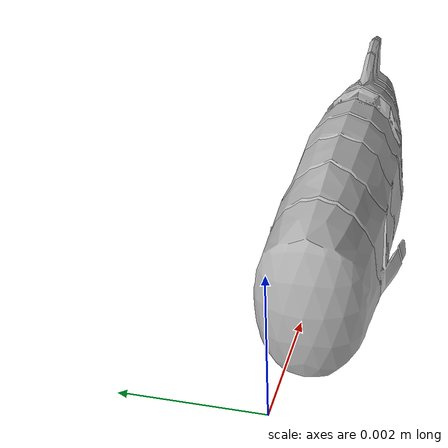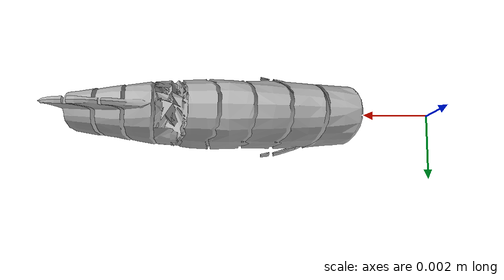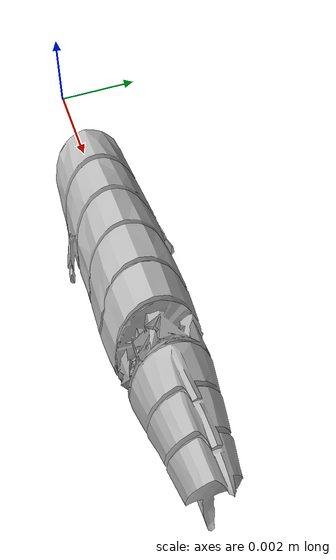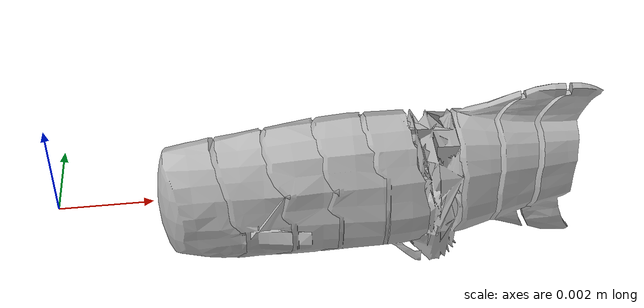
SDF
<?xml version="1.0" ?>
<sdf version="1.6">
  <world name="world">
    <model name="zebrafish">
      <pose>0 0 0 0 0 0</pose>
      <link name="link_1">
        <pose>0.003000000026077032 0.0 0.0 0 0 0</pose>
        <inertial>
          <pose>0.0002732492240615168 -1.97994288919193e-08 -5.650116857951326e-05 0.0 0.0 0.0</pose>
          <mass>4.0521463491666665e-06</mass>
          <inertia>
            <ixx>2.8087038294161773e-12</ixx>
            <ixy>2.59860681584197e-16</ixy>
            <ixz>7.53613830741763e-14</ixz>
            <iyy>2.3503783406325966e-12</iyy>
            <iyz>4.2333460592653663e-16</iyz>
            <izz>1.4029470401400248e-12</izz>
          </inertia>
        </inertial>
        <collision name="link_1_collision">
          <pose>0.0 0.0 0.0 0.0 0.0 0.0</pose>
          <geometry>
            <mesh>
              <uri>meshes_zebrafish/link_1.obj</uri>
              <scale>1.0 1.0 1.0</scale>
            </mesh>
          </geometry>
        </collision>
        <visual name="link_1_visual">
          <pose>0.0 0.0 0.0 0.0 0.0 0.0</pose>
          <geometry>
            <mesh>
              <uri>meshes_zebrafish/link_1.obj</uri>
              <scale>1.0 1.0 1.0</scale>
            </mesh>
          </geometry>
          <material/>
        </visual>
      </link>
      <link name="link_2">
        <pose>0.004000000189989805 0.0 0.0 0 0 0</pose>
        <inertial>
          <pose>-0.00022717678486607507 -8.219959851907085e-08 -6.289915105203633e-05 0.0 0.0 0.0</pose>
          <mass>4.854872365333333e-06</mass>
          <inertia>
            <ixx>4.054950923692486e-12</ixx>
            <ixy>-1.1484001297372617e-16</ixy>
            <ixz>1.1419704220898796e-13</ixz>
            <iyy>3.3781171583254866e-12</iyy>
            <iyz>6.818633027387787e-16</iyz>
            <izz>1.981751379253991e-12</izz>
          </inertia>
        </inertial>
        <collision name="link_2_collision">
          <pose>0.0 0.0 0.0 0.0 0.0 0.0</pose>
          <geometry>
            <mesh>
              <uri>meshes_zebrafish/link_2.obj</uri>
              <scale>1.0 1.0 1.0</scale>
            </mesh>
          </geometry>
        </collision>
        <visual name="link_2_visual">
          <pose>0.0 0.0 0.0 0.0 0.0 0.0</pose>
          <geometry>
            <mesh>
              <uri>meshes_zebrafish/link_2.obj</uri>
              <scale>1.0 1.0 1.0</scale>
            </mesh>
          </geometry>
          <material/>
        </visual>
      </link>
      <link name="link_3">
        <pose>0.004999999888241291 0.0 0.0 0 0 0</pose>
        <inertial>
          <pose>-0.0002226231496408773 3.3757354961996367e-07 -3.5049441185557767e-06 0.0 0.0 0.0</pose>
          <mass>5.157439432833333e-06</mass>
          <inertia>
            <ixx>4.67697383062243e-12</ixx>
            <ixy>-9.074877137566703e-16</ixy>
            <ixz>3.6481284000477364e-14</ixz>
            <iyy>3.9454530406174475e-12</iyy>
            <iyz>-5.468168704910777e-16</iyz>
            <izz>2.0510055572515746e-12</izz>
          </inertia>
        </inertial>
        <collision name="link_3_collision">
          <pose>0.0 0.0 0.0 0.0 0.0 0.0</pose>
          <geometry>
            <mesh>
              <uri>meshes_zebrafish/link_3.obj</uri>
              <scale>1.0 1.0 1.0</scale>
            </mesh>
          </geometry>
        </collision>
        <visual name="link_3_visual">
          <pose>0.0 0.0 0.0 0.0 0.0 0.0</pose>
          <geometry>
            <mesh>
              <uri>meshes_zebrafish/link_3.obj</uri>
              <scale>1.0 1.0 1.0</scale>
            </mesh>
          </geometry>
          <material/>
        </visual>
      </link>
      <link name="link_4">
        <pose>0.006000000052154064 0.0 0.0 0 0 0</pose>
        <inertial>
          <pose>-0.00019477319484265197 2.3520952322439315e-07 4.5153454879482645e-05 0.0 0.0 0.0</pose>
          <mass>5.498348945e-06</mass>
          <inertia>
            <ixx>5.301401349493594e-12</ixx>
            <ixy>-7.594792361230709e-16</ixy>
            <ixz>-1.2919244220334572e-14</ixz>
            <iyy>4.518545556789769e-12</iyy>
            <iyz>-1.913852691484321e-15</iyz>
            <izz>2.349854946278564e-12</izz>
          </inertia>
        </inertial>
        <collision name="link_4_collision">
          <pose>0.0 0.0 0.0 0.0 0.0 0.0</pose>
          <geometry>
            <mesh>
              <uri>meshes_zebrafish/link_4.obj</uri>
              <scale>1.0 1.0 1.0</scale>
            </mesh>
          </geometry>
        </collision>
        <visual name="link_4_visual">
          <pose>0.0 0.0 0.0 0.0 0.0 0.0</pose>
          <geometry>
            <mesh>
              <uri>meshes_zebrafish/link_4.obj</uri>
              <scale>1.0 1.0 1.0</scale>
            </mesh>
          </geometry>
          <material/>
        </visual>
      </link>
      <link name="link_5">
        <pose>0.007000000216066837 0.0 0.0 0 0 0</pose>
        <inertial>
          <pose>-0.00020395735361605007 -8.842410672844107e-08 4.337361965129497e-05 0.0 0.0 0.0</pose>
          <mass>5.479874165666666e-06</mass>
          <inertia>
            <ixx>5.300408358361644e-12</ixx>
            <ixy>2.2081984687633257e-16</ixy>
            <ixz>2.5655783521762258e-14</ixz>
            <iyy>4.488854231172425e-12</iyy>
            <iyz>5.337128725014414e-16</iyz>
            <izz>2.2795643807420016e-12</izz>
          </inertia>
        </inertial>
        <collision name="link_5_collision">
          <pose>0.0 0.0 0.0 0.0 0.0 0.0</pose>
          <geometry>
            <mesh>
              <uri>meshes_zebrafish/link_5.obj</uri>
              <scale>1.0 1.0 1.0</scale>
            </mesh>
          </geometry>
        </collision>
        <visual name="link_5_visual">
          <pose>0.0 0.0 0.0 0.0 0.0 0.0</pose>
          <geometry>
            <mesh>
              <uri>meshes_zebrafish/link_5.obj</uri>
              <scale>1.0 1.0 1.0</scale>
            </mesh>
          </geometry>
          <material/>
        </visual>
      </link>
      <link name="link_6">
        <pose>0.00800000037997961 0.0 0.0 0 0 0</pose>
        <inertial>
          <pose>-0.00024221163159728412 -1.9450732335945777e-07 3.207300392264691e-05 0.0 0.0 0.0</pose>
          <mass>5.159457690333333e-06</mass>
          <inertia>
            <ixx>4.939246005196555e-12</ixx>
            <ixy>6.053666353726204e-16</ixy>
            <ixz>9.647922195089838e-15</ixz>
            <iyy>4.24538394961568e-12</iyy>
            <iyz>-1.9796288817279288e-16</iyz>
            <izz>1.849075636047097e-12</izz>
          </inertia>
        </inertial>
        <collision name="link_6_collision">
          <pose>0.0 0.0 0.0 0.0 0.0 0.0</pose>
          <geometry>
            <mesh>
              <uri>meshes_zebrafish/link_6.obj</uri>
              <scale>1.0 1.0 1.0</scale>
            </mesh>
          </geometry>
        </collision>
        <visual name="link_6_visual">
          <pose>0.0 0.0 0.0 0.0 0.0 0.0</pose>
          <geometry>
            <mesh>
              <uri>meshes_zebrafish/link_6.obj</uri>
              <scale>1.0 1.0 1.0</scale>
            </mesh>
          </geometry>
          <material/>
        </visual>
      </link>
      <link name="link_7">
        <pose>0.008999999612569809 0.0 0.0 0 0 0</pose>
        <inertial>
          <pose>-0.0003052042318265614 -2.714426844606979e-07 0.00015843392122992753 0.0 0.0 0.0</pose>
          <mass>4.249855453833333e-06</mass>
          <inertia>
            <ixx>3.3009859429267404e-12</ixx>
            <ixy>3.1379057053656826e-16</ixy>
            <ixz>-1.649673957428002e-13</ixz>
            <iyy>2.8409817451483943e-12</iyy>
            <iyz>7.12045864460346e-16</iyz>
            <izz>1.293106339839356e-12</izz>
          </inertia>
        </inertial>
        <collision name="link_7_collision">
          <pose>0.0 0.0 0.0 0.0 0.0 0.0</pose>
          <geometry>
            <mesh>
              <uri>meshes_zebrafish/link_7.obj</uri>
              <scale>1.0 1.0 1.0</scale>
            </mesh>
          </geometry>
        </collision>
        <visual name="link_7_visual">
          <pose>0.0 0.0 0.0 0.0 0.0 0.0</pose>
          <geometry>
            <mesh>
              <uri>meshes_zebrafish/link_7.obj</uri>
              <scale>1.0 1.0 1.0</scale>
            </mesh>
          </geometry>
          <material/>
        </visual>
      </link>
      <link name="link_8">
        <pose>0.009999999776482582 0.0 0.0 0 0 0</pose>
        <inertial>
          <pose>-0.00034258391490533507 1.496806484415186e-07 0.00023371407774293266 0.0 0.0 0.0</pose>
          <mass>3.4060886698333332e-06</mass>
          <inertia>
            <ixx>2.3861448209304844e-12</ixx>
            <ixy>4.119826686591595e-17</ixy>
            <ixz>-1.9282902344368923e-13</ixz>
            <iyy>2.2293678879472307e-12</iyy>
            <iyz>2.0877097769727913e-16</iyz>
            <izz>8.426788781595641e-13</izz>
          </inertia>
        </inertial>
        <collision name="link_8_collision">
          <pose>0.0 0.0 0.0 0.0 0.0 0.0</pose>
          <geometry>
            <mesh>
              <uri>meshes_zebrafish/link_8.obj</uri>
              <scale>1.0 1.0 1.0</scale>
            </mesh>
          </geometry>
        </collision>
        <visual name="link_8_visual">
          <pose>0.0 0.0 0.0 0.0 0.0 0.0</pose>
          <geometry>
            <mesh>
              <uri>meshes_zebrafish/link_8.obj</uri>
              <scale>1.0 1.0 1.0</scale>
            </mesh>
          </geometry>
          <material/>
        </visual>
      </link>
      <link name="link_9">
        <pose>0.010999999940395355 0.0 0.0 0 0 0</pose>
        <inertial>
          <pose>-0.00037563688475628207 -1.148331642662189e-08 0.00019189624898692601 0.0 0.0 0.0</pose>
          <mass>2.650774316333333e-06</mass>
          <inertia>
            <ixx>1.7882286047325874e-12</ixx>
            <ixy>7.268954042952895e-17</ixy>
            <ixz>-7.176690563395181e-14</ixz>
            <iyy>1.787960335865206e-12</iyy>
            <iyz>3.481599167776466e-16</iyz>
            <izz>5.124582731408049e-13</izz>
          </inertia>
        </inertial>
        <collision name="link_9_collision">
          <pose>0.0 0.0 0.0 0.0 0.0 0.0</pose>
          <geometry>
            <mesh>
              <uri>meshes_zebrafish/link_9.obj</uri>
              <scale>1.0 1.0 1.0</scale>
            </mesh>
          </geometry>
        </collision>
        <visual name="link_9_visual">
          <pose>0.0 0.0 0.0 0.0 0.0 0.0</pose>
          <geometry>
            <mesh>
              <uri>meshes_zebrafish/link_9.obj</uri>
              <scale>1.0 1.0 1.0</scale>
            </mesh>
          </geometry>
          <material/>
        </visual>
      </link>
      <joint name="joint_1" type="revolute">
        <parent>link_1</parent>
        <child>link_2</child>
        <pose>0 0 0 0 0 0</pose>
        <axis>
          <xyz>0 0 1</xyz>
          <limit>
            <lower>-1.5707963267948966</lower>
            <upper>1.5707963267948966</upper>
            <effort>100</effort>
            <velocity>100</velocity>
          </limit>
        </axis>
      </joint>
      <joint name="joint_2" type="revolute">
        <parent>link_2</parent>
        <child>link_3</child>
        <pose>0 0 0 0 0 0</pose>
        <axis>
          <xyz>0 0 1</xyz>
          <limit>
            <lower>-1.5707963267948966</lower>
            <upper>1.5707963267948966</upper>
            <effort>100</effort>
            <velocity>100</velocity>
          </limit>
        </axis>
      </joint>
      <joint name="joint_3" type="revolute">
        <parent>link_3</parent>
        <child>link_4</child>
        <pose>0 0 0 0 0 0</pose>
        <axis>
          <xyz>0 0 1</xyz>
          <limit>
            <lower>-1.5707963267948966</lower>
            <upper>1.5707963267948966</upper>
            <effort>100</effort>
            <velocity>100</velocity>
          </limit>
        </axis>
      </joint>
      <joint name="joint_4" type="revolute">
        <parent>link_4</parent>
        <child>link_5</child>
        <pose>0 0 0 0 0 0</pose>
        <axis>
          <xyz>0 0 1</xyz>
          <limit>
            <lower>-1.5707963267948966</lower>
            <upper>1.5707963267948966</upper>
            <effort>100</effort>
            <velocity>100</velocity>
          </limit>
        </axis>
      </joint>
      <joint name="joint_5" type="revolute">
        <parent>link_5</parent>
        <child>link_6</child>
        <pose>0 0 0 0 0 0</pose>
        <axis>
          <xyz>0 0 1</xyz>
          <limit>
            <lower>-1.5707963267948966</lower>
            <upper>1.5707963267948966</upper>
            <effort>100</effort>
            <velocity>100</velocity>
          </limit>
        </axis>
      </joint>
      <joint name="joint_6" type="revolute">
        <parent>link_6</parent>
        <child>link_7</child>
        <pose>0 0 0 0 0 0</pose>
        <axis>
          <xyz>0 0 1</xyz>
          <limit>
            <lower>-1.5707963267948966</lower>
            <upper>1.5707963267948966</upper>
            <effort>100</effort>
            <velocity>100</velocity>
          </limit>
        </axis>
      </joint>
      <joint name="joint_7" type="revolute">
        <parent>link_7</parent>
        <child>link_8</child>
        <pose>0 0 0 0 0 0</pose>
        <axis>
          <xyz>0 0 1</xyz>
          <limit>
            <lower>-1.5707963267948966</lower>
            <upper>1.5707963267948966</upper>
            <effort>100</effort>
            <velocity>100</velocity>
          </limit>
        </axis>
      </joint>
      <joint name="joint_8" type="revolute">
        <parent>link_8</parent>
        <child>link_9</child>
        <pose>0 0 0 0 0 0</pose>
        <axis>
          <xyz>0 0 1</xyz>
          <limit>
            <lower>-1.5707963267948966</lower>
            <upper>1.5707963267948966</upper>
            <effort>100</effort>
            <velocity>100</velocity>
          </limit>
        </axis>
      </joint>
    </model>
  </world>
</sdf>
